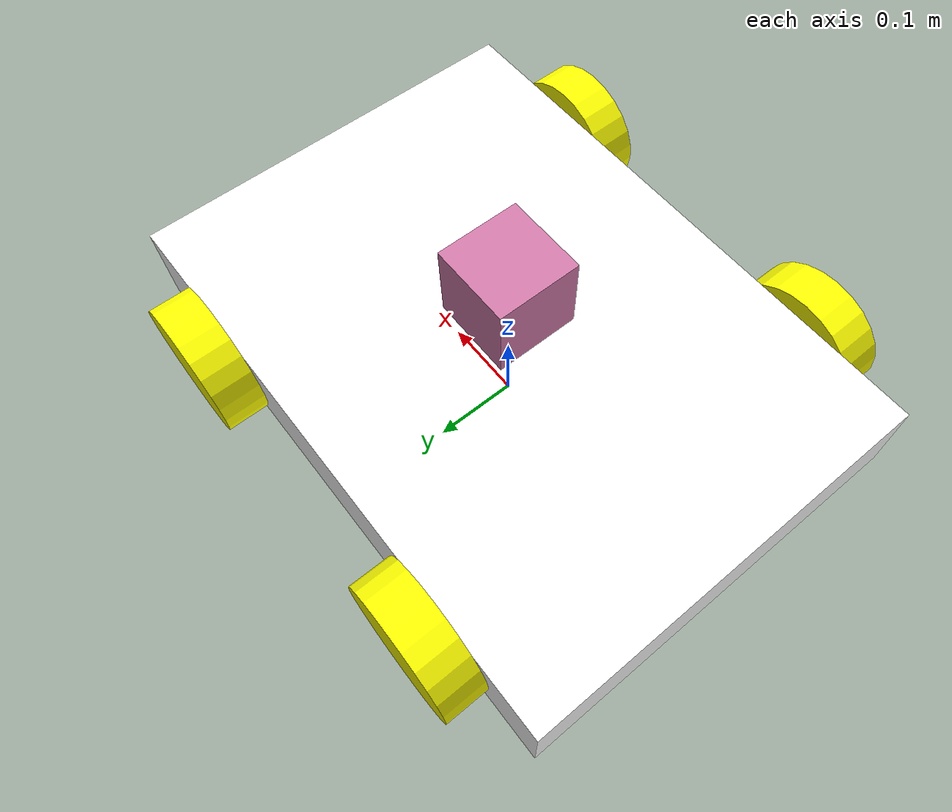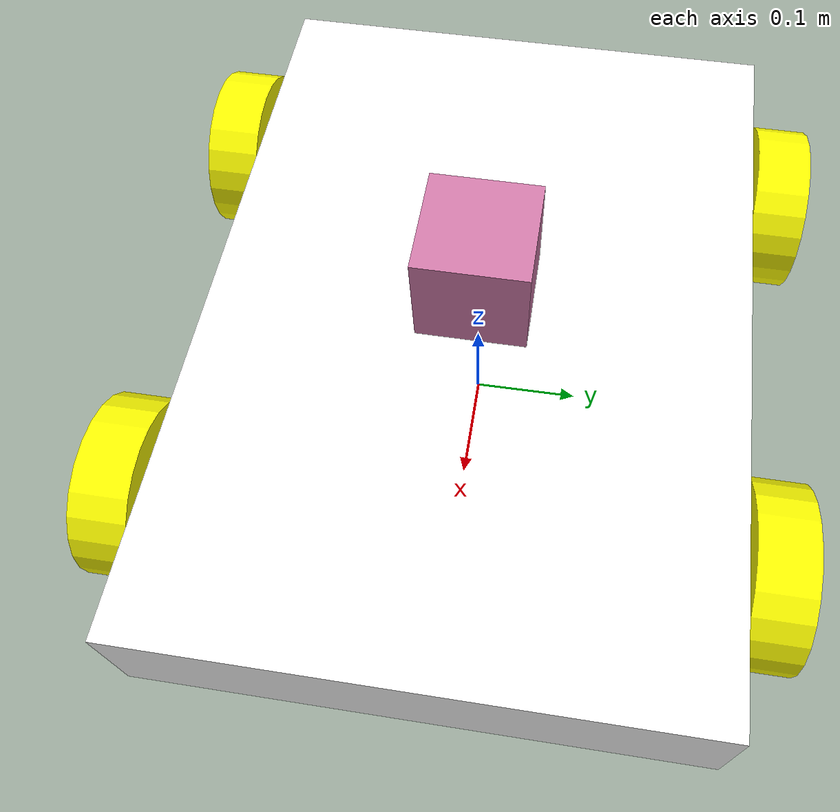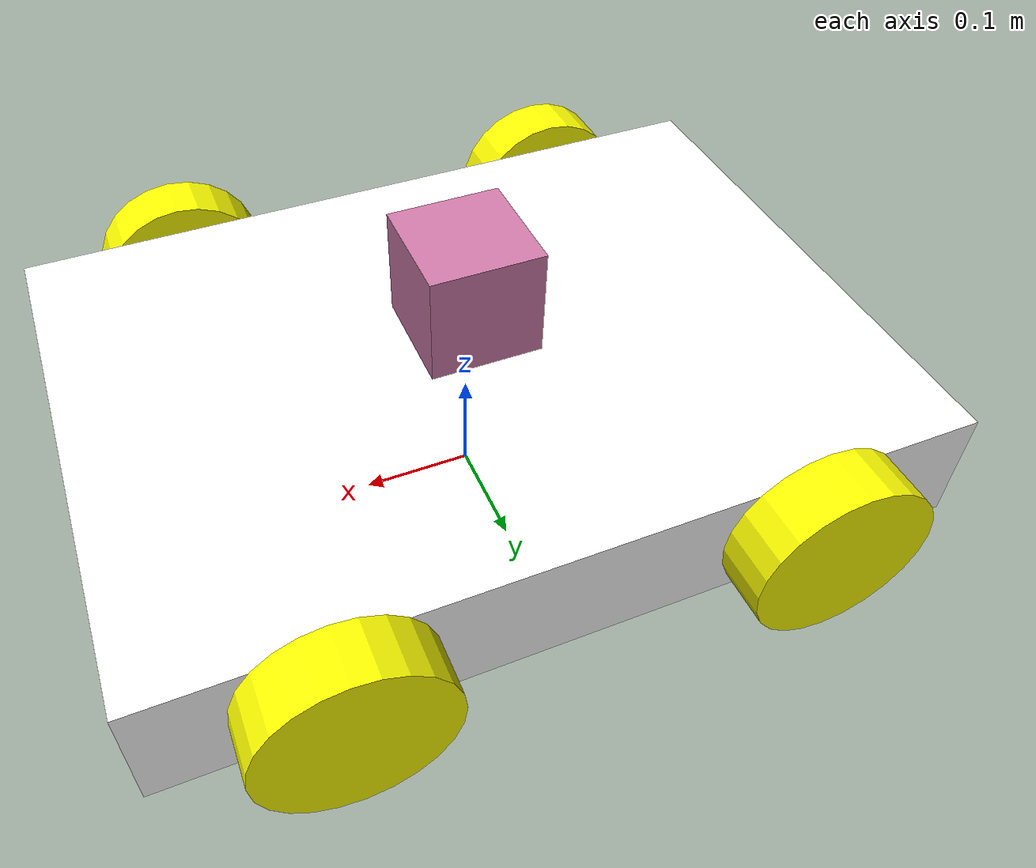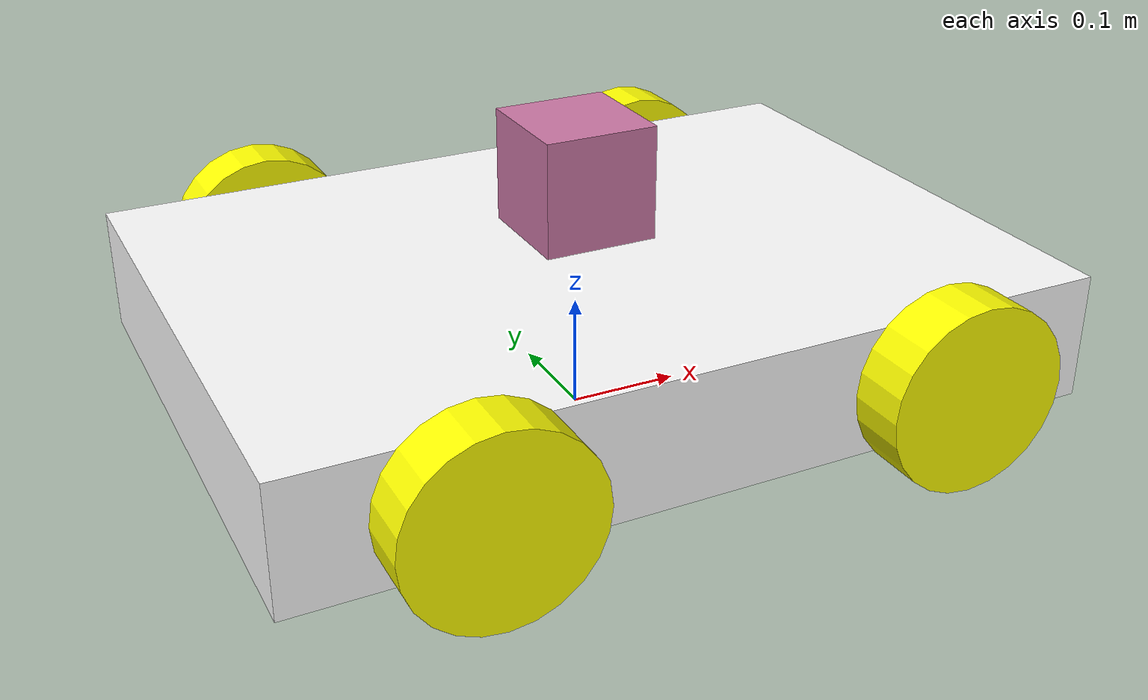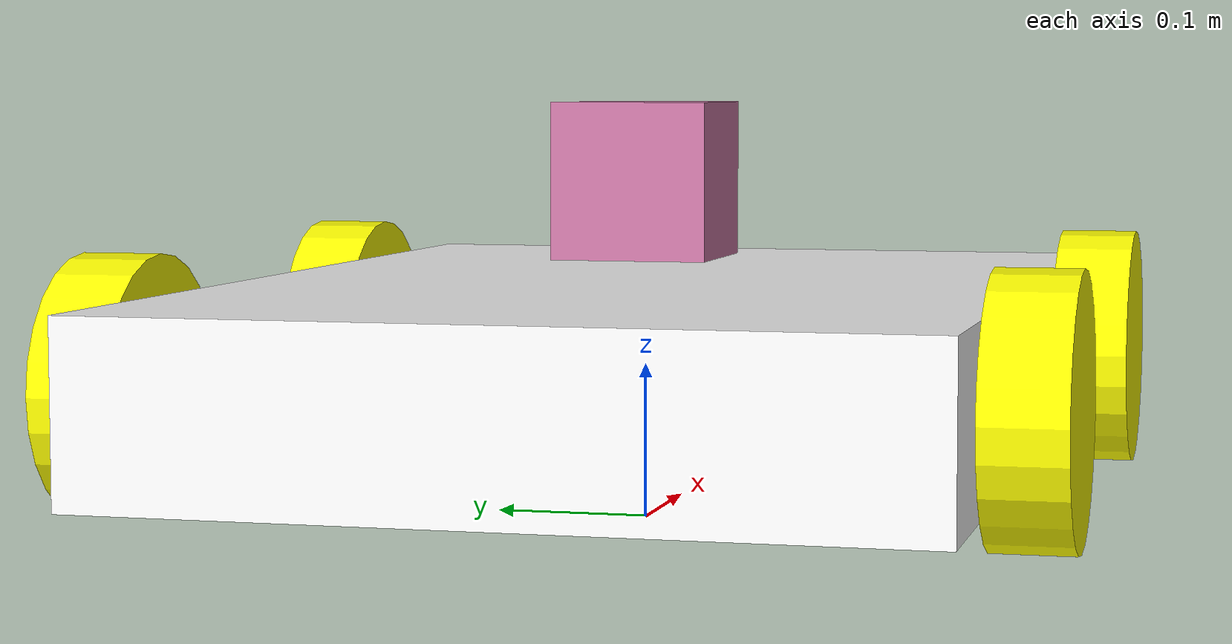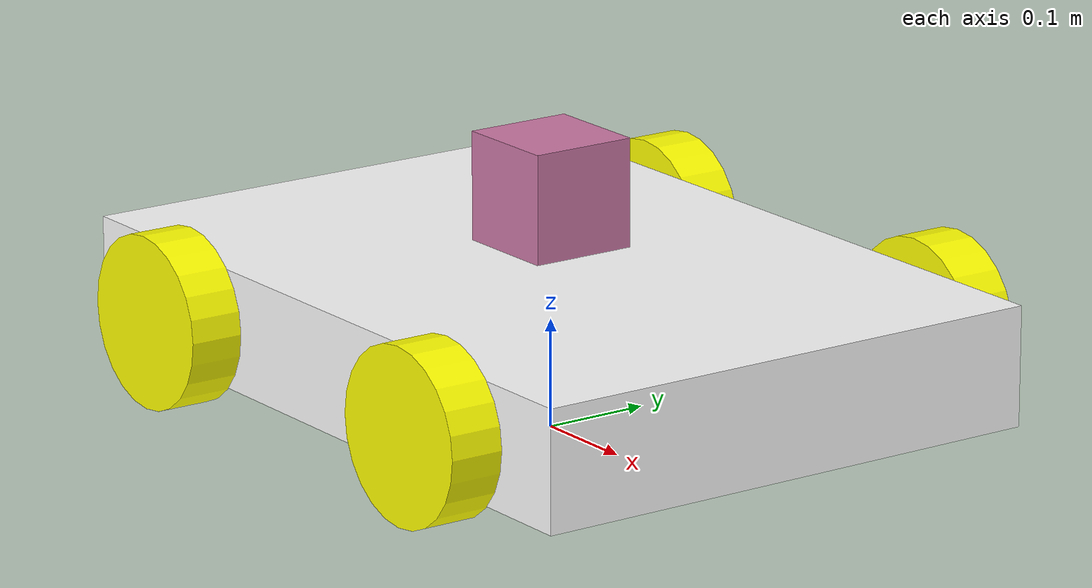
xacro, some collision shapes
<?xml version="1.0"?>

<robot xmlns:xacro="http://www.ros.org/wiki/xacro" name="robot">

<xacro:include filename="$(find robot_model)/urdf/robot.gazebo"/>

<link name="base_footprint"/>

    <link name="base_link">
        <inertial>
            <origin xyz="0.0 0.0 0.0" rpy="0.0 0.0 0.0"/>
            <mass value="40.0"/>
            <inertia ixx="0.5" ixy="0.0" ixz="0.0"
            iyy="1.0" iyz="0.0"
            izz="0.1"/>
</inertial>

        <visual name="">
            <origin xyz="0.0 0.0 0.0" rpy="0.0 0.0 0.0"/>
            <geometry>
                <box size="0.7 0.5 0.11"/>
            </geometry>
            <material name="">
                <color rgba="1.0 1.0 1.0 1.0"/>
                <texture filename=""/>
            </material>
        </visual>

        <collision>
            <origin xyz="0.0 0.0 0.0" rpy="0.0 0.0 0.0"/>
            <geometry>
                <box size="0.7 0.5 0.1"/>
            </geometry>
        </collision>

    </link>

    <joint name="base_joint" type="fixed">
        <origin xyz="0.0 0.0 0.1" rpy="0.0 0.0 0.0"/>
        <parent link="base_footprint"/>
        <child link="base_link"/>
        <axis xyz="0.0 0.0 0.0"/>
        <limit lower="0.0" upper="0.0" effort="0.0" velocity="0.0"/>
    </joint>

    <xacro:macro name="wheel" params="name x y">

        <link name="${name}_link">

            <inertial>
                <origin xyz="0.0 0.0 0.0" rpy="0.0 0.0 0.0"/>
                <mass value="2.0"/>
                <inertia ixx="1.0" ixy="0.0" ixz="0.0" iyy="1.0" iyz="0.0" izz="1.0"/>
            </inertial>

            <visual name="">
                <origin xyz="0.0 0.0 0.0" rpy="0.0 0.0 0.0"/>
                <geometry>
                   <cylinder radius="0.08" length="0.05"/>
                </geometry>
                <material name="">
                    <color rgba="1.0 1.0 0.0 1.0"/>
                    <texture filename=""/>
                </material>
            </visual>

            <collision>
                <origin xyz="0.0 0.0 0.0" rpy="0.0 0.0 0.0"/>
                <geometry>
                    <cylinder radius="0.1" length="0.02"/>
                </geometry>
            </collision>

        </link>

        <joint name="${name}_joint" type="continuous">
            <origin xyz="${x} ${y} 0.0" rpy="1.57 0.0 0.0"/>
            <parent link="base_link"/>
            <child link="${name}_link"/>
            <axis xyz="0.0 0.0 1.0"/>
            <limit lower="0.0" upper="0.0" effort="0.0" velocity="0.0"/>
        </joint>

    </xacro:macro>

<xacro:wheel name = "front_right_wheel" x ="0.2" y = "-0.275"/>
<xacro:wheel name = "front_left_wheel" x ="0.2" y = "0.275"/>
<xacro:wheel name = "back_right_wheel" x ="-0.2" y = "-0.275"/>
<xacro:wheel name = "back_left_wheel" x ="-0.2" y = "0.275"/>

<joint name="hokuyo_joint" type="fixed">
    <axis xyz="0 0 0" />
    <origin xyz="0 0 0.12" rpy="0 0 0"/>
    <parent link="base_link"/>
    <child link="hokuyo_link"/>
  </joint>

  <!-- Hokuyo Laser -->
  <link name="hokuyo_link">
    <collision>
      <origin xyz="0 0 0" rpy="0 0 0"/>
      <geometry>
    <box size="0.1 0.1 0.1"/>
      </geometry>
    </collision>

    <visual>
      <origin xyz="0 0 0" rpy="0 0 0"/>
      <geometry>
        <mesh filename="package://robot_model/meshes/hokuyo.dae"/>
      </geometry>
    </visual>

    <inertial>
      <mass value="1e-5" />
      <origin xyz="0 0 0" rpy="0 0 0"/>
      <inertia ixx="1e-6" ixy="0" ixz="0" iyy="1e-6" iyz="0" izz="1e-6" />
    </inertial>
  </link>

<!-- Used for only single proberty like defining a constant -->

</robot>
